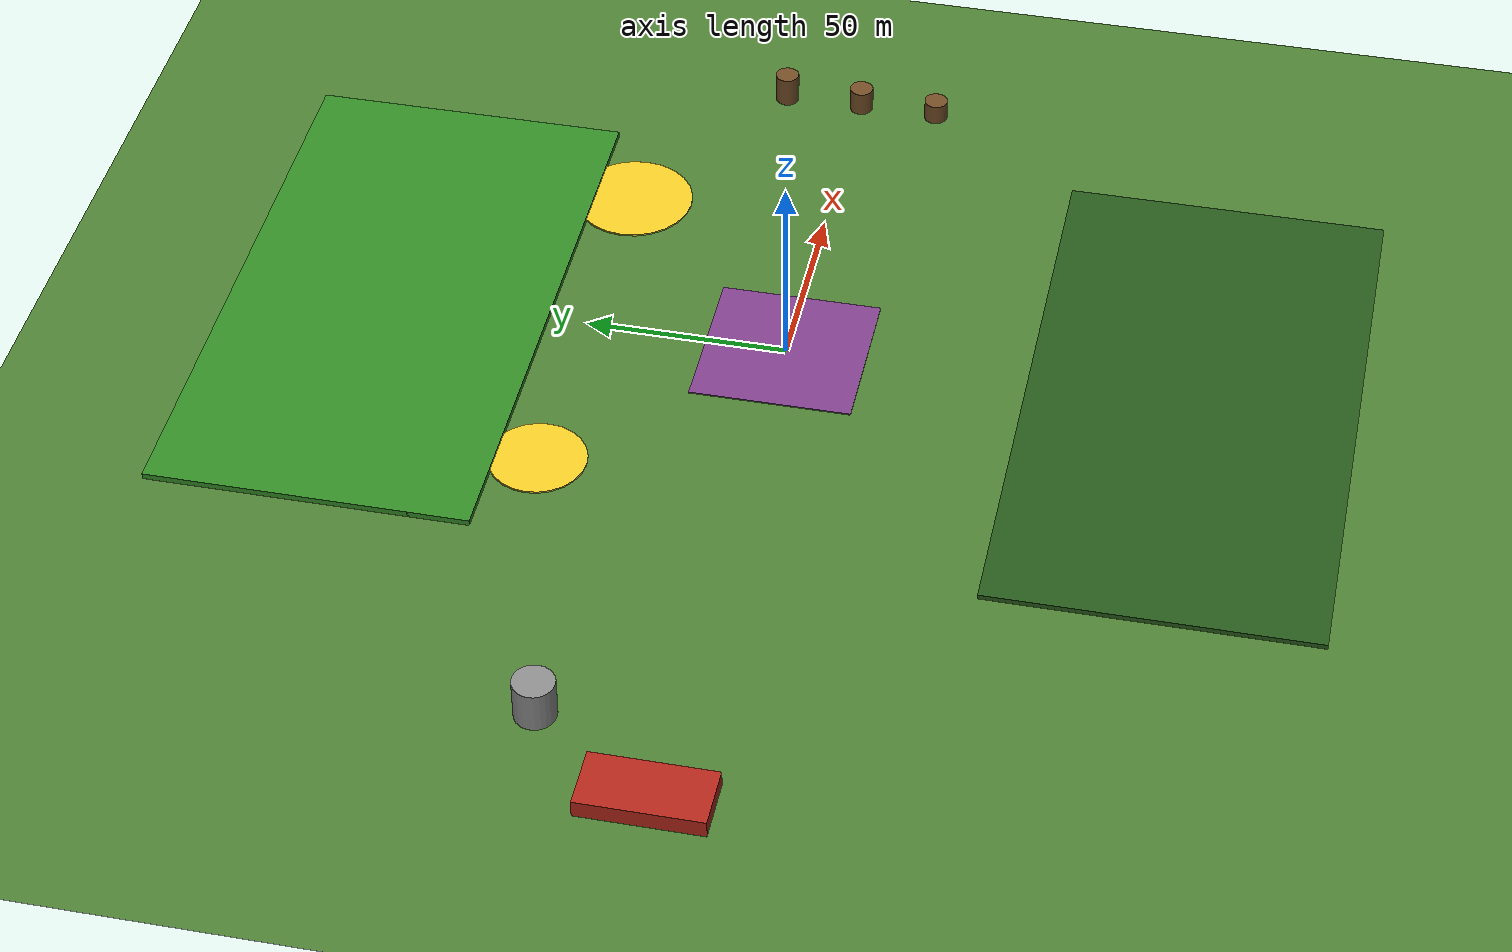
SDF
<sdf version="1.10">
 <world name="arg_fruits_tree">
  <physics type="ode">
   <max_step_size>0.0040000000000000001</max_step_size>
   <real_time_factor>1</real_time_factor>
   <real_time_update_rate>250</real_time_update_rate>
  </physics>
  <gravity>0 0 -9.8000000000000007</gravity>
  <magnetic_field>6.0000000000000002e-06 2.3e-05 -4.1999999999999998e-05</magnetic_field>
  <atmosphere type="adiabatic"/>
  <scene>
   <grid>false</grid>
   <ambient>0.400000006 0.400000006 0.400000006 1</ambient>
   <background>0.699999988 0.800000012 1 1</background>
   <shadows>true</shadows>
  </scene>
  <spherical_coordinates>
   <surface_model>EARTH_WGS84</surface_model>
   <world_frame_orientation>ENU</world_frame_orientation>
   <latitude_deg>37.774900000000002</latitude_deg>
   <longitude_deg>-122.4194</longitude_deg>
   <elevation>0</elevation>
   <heading_deg>0</heading_deg>
  </spherical_coordinates>
  <model name="ground_plane">
   <static>true</static>
   <link name="link">
    <collision name="collision">
     <geometry><plane><normal>0 0 1</normal><size>2000 2000</size></plane></geometry>
     <surface><friction><ode><mu>100</mu><mu2>50</mu2></ode></friction></surface>
    </collision>
    <visual name="visual">
     <geometry><plane><normal>0 0 1</normal><size>2000 2000</size></plane></geometry>
     <material>
      <ambient>0.25 0.400000006 0.180000007 1</ambient>
      <diffuse>0.300000012 0.5 0.200000003 1</diffuse>
      <specular>0.100000001 0.100000001 0.100000001 1</specular>
     </material>
    </visual>
    <inertial>
     <mass>1</mass>
     <inertia><ixx>1</ixx><ixy>0</ixy><ixz>0</ixz><iyy>1</iyy><iyz>0</iyz><izz>1</izz></inertia>
    </inertial>
   </link>
  </model>
  <model name="corn_field_1">
   <pose>0 100 0.10000000000000001 0 0 0</pose>
   <static>true</static>
   <link name="link">
    <visual name="visual">
     <geometry><box><size>150 80 2</size></box></geometry>
     <material>
      <ambient>0.150000006 0.449999988 0.119999997 1</ambient>
      <diffuse>0.200000003 0.550000012 0.150000006 1</diffuse>
      <specular>0.0500000007 0.0500000007 0.0500000007 1</specular>
     </material>
    </visual>
    <collision name="collision">
     <geometry><box><size>150 80 0.20000000000000001</size></box></geometry>
    </collision>
    <inertial>
     <mass>1</mass>
     <inertia><ixx>1</ixx><ixy>0</ixy><ixz>0</ixz><iyy>1</iyy><iyz>0</iyz><izz>1</izz></inertia>
    </inertial>
   </link>
  </model>
  <model name="soybean_field_1">
   <pose>0 -100 0.10000000000000001 0 0 0</pose>
   <static>true</static>
   <link name="link">
    <visual name="visual">
     <geometry><box><size>150 80 1.5</size></box></geometry>
     <material>
      <ambient>0.100000001 0.280000001 0.0799999982 1</ambient>
      <diffuse>0.150000006 0.349999994 0.100000001 1</diffuse>
      <specular>0.0500000007 0.0500000007 0.0500000007 1</specular>
     </material>
    </visual>
    <collision name="collision">
     <geometry><box><size>150 80 0.20000000000000001</size></box></geometry>
    </collision>
    <inertial>
     <mass>1</mass>
     <inertia><ixx>1</ixx><ixy>0</ixy><ixz>0</ixz><iyy>1</iyy><iyz>0</iyz><izz>1</izz></inertia>
    </inertial>
   </link>
  </model>
  <model name="sunflower_patch_1">
   <pose>50 50 0.20000000000000001 0 0 0</pose>
   <static>true</static>
   <link name="link">
    <visual name="visual">
     <geometry><cylinder><radius>15</radius><length>0.40000000000000002</length></cylinder></geometry>
     <material>
      <ambient>0.800000012 0.649999976 0.100000001 1</ambient>
      <diffuse>0.949999988 0.800000012 0.150000006 1</diffuse>
      <specular>0.200000003 0.200000003 0.100000001 1</specular>
     </material>
    </visual>
    <collision name="collision">
     <geometry><cylinder><radius>15</radius><length>0.40000000000000002</length></cylinder></geometry>
    </collision>
    <inertial>
     <mass>1</mass>
     <inertia><ixx>1</ixx><ixy>0</ixy><ixz>0</ixz><iyy>1</iyy><iyz>0</iyz><izz>1</izz></inertia>
    </inertial>
   </link>
  </model>
  <model name="sunflower_patch_2">
   <pose>-50 50 0.20000000000000001 0 0 0</pose>
   <static>true</static>
   <link name="link">
    <visual name="visual">
     <geometry><cylinder><radius>12</radius><length>0.40000000000000002</length></cylinder></geometry>
     <material>
      <ambient>0.800000012 0.649999976 0.100000001 1</ambient>
      <diffuse>0.949999988 0.800000012 0.150000006 1</diffuse>
      <specular>0.200000003 0.200000003 0.100000001 1</specular>
     </material>
    </visual>
    <collision name="collision">
     <geometry><cylinder><radius>12</radius><length>0.40000000000000002</length></cylinder></geometry>
    </collision>
    <inertial>
     <mass>1</mass>
     <inertia><ixx>1</ixx><ixy>0</ixy><ixz>0</ixz><iyy>1</iyy><iyz>0</iyz><izz>1</izz></inertia>
    </inertial>
   </link>
  </model>
  <model name="clover_field">
   <pose>0 0 0.14999999999999999 0 0 0</pose>
   <static>true</static>
   <link name="link">
    <visual name="visual">
     <geometry><box><size>40 40 0.29999999999999999</size></box></geometry>
     <material>
      <ambient>0.400000006 0.180000007 0.449999988 1</ambient>
      <diffuse>0.5 0.25 0.550000012 1</diffuse>
      <specular>0.100000001 0.100000001 0.100000001 1</specular>
     </material>
    </visual>
    <collision name="collision"><geometry><box><size>40 40 0.29999999999999999</size></box></geometry></collision>
    <inertial>
     <mass>1</mass>
     <inertia><ixx>1</ixx><ixy>0</ixy><ixz>0</ixz><iyy>1</iyy><iyz>0</iyz><izz>1</izz></inertia>
    </inertial>
   </link>
  </model>
  <model name="farm_barn">
   <pose>-150 0 0 0 0 1.5699999999999998</pose>
   <static>true</static>
   <link name="link">
    <visual name="visual">
     <geometry><box><size>30 15 8</size></box></geometry>
     <material>
      <ambient>0.550000012 0.119999997 0.0799999982 1</ambient>
      <diffuse>0.699999988 0.150000006 0.100000001 1</diffuse>
      <specular>0.100000001 0.100000001 0.100000001 1</specular>
     </material>
    </visual>
    <collision name="collision"><geometry><box><size>30 15 8</size></box></geometry></collision>
    <inertial>
     <mass>1</mass>
     <inertia><ixx>1</ixx><ixy>0</ixy><ixz>0</ixz><iyy>1</iyy><iyz>0</iyz><izz>1</izz></inertia>
    </inertial>
   </link>
  </model>
  <model name="farm_silo">
   <pose>-130 30 0 0 0 0</pose>
   <static>true</static>
   <link name="link">
    <visual name="visual">
     <geometry><cylinder><radius>5</radius><length>20</length></cylinder></geometry>
     <material>
      <ambient>0.449999988 0.449999988 0.449999988 1</ambient>
      <diffuse>0.550000012 0.550000012 0.550000012 1</diffuse>
      <specular>0.200000003 0.200000003 0.200000003 1</specular>
     </material>
    </visual>
    <collision name="collision">
     <geometry><cylinder><radius>5</radius><length>20</length></cylinder></geometry>
    </collision>
    <inertial>
     <mass>1</mass>
     <inertia><ixx>1</ixx><ixy>0</ixy><ixz>0</ixz><iyy>1</iyy><iyz>0</iyz><izz>1</izz></inertia>
    </inertial>
   </link>
  </model>
  <model name="tree_line_1">
   <pose>100 0 0 0 0 0</pose>
   <static>true</static>
   <link name="link">
    <visual name="visual">
     <geometry><cylinder><radius>3</radius><length>12</length></cylinder></geometry>
     <material>
      <ambient>0.349999994 0.219999999 0.100000001 1</ambient>
      <diffuse>0.449999988 0.300000012 0.150000006 1</diffuse>
      <specular>0.0500000007 0.0500000007 0.0500000007 1</specular>
     </material>
    </visual>
    <collision name="collision">
     <geometry><cylinder><radius>3</radius><length>12</length></cylinder></geometry>
    </collision>
    <inertial>
     <mass>1</mass>
     <inertia><ixx>1</ixx><ixy>0</ixy><ixz>0</ixz><iyy>1</iyy><iyz>0</iyz><izz>1</izz></inertia>
    </inertial>
   </link>
  </model>
  <model name="tree_line_2">
   <pose>100 20 0 0 0 0</pose>
   <static>true</static>
   <link name="link">
    <visual name="visual">
     <geometry><cylinder><radius>3</radius><length>15</length></cylinder></geometry>
     <material>
      <ambient>0.349999994 0.219999999 0.100000001 1</ambient>
      <diffuse>0.449999988 0.300000012 0.150000006 1</diffuse>
      <specular>0.0500000007 0.0500000007 0.0500000007 1</specular>
     </material>
    </visual>
    <collision name="collision">
     <geometry><cylinder><radius>3</radius><length>15</length></cylinder></geometry>
    </collision>
    <inertial>
     <mass>1</mass>
     <inertia><ixx>1</ixx><ixy>0</ixy><ixz>0</ixz><iyy>1</iyy><iyz>0</iyz><izz>1</izz></inertia>
    </inertial>
   </link>
  </model>
  <model name="tree_line_3">
   <pose>100 -20 0 0 0 0</pose>
   <static>true</static>
   <link name="link">
    <visual name="visual">
     <geometry><cylinder><radius>3</radius><length>10</length></cylinder></geometry>
     <material>
      <ambient>0.349999994 0.219999999 0.100000001 1</ambient>
      <diffuse>0.449999988 0.300000012 0.150000006 1</diffuse>
      <specular>0.0500000007 0.0500000007 0.0500000007 1</specular>
     </material>
    </visual>
    <collision name="collision">
     <geometry><cylinder><radius>3</radius><length>10</length></cylinder></geometry>
    </collision>
    <inertial>
     <mass>1</mass>
     <inertia><ixx>1</ixx><ixy>0</ixy><ixz>0</ixz><iyy>1</iyy><iyz>0</iyz><izz>1</izz></inertia>
    </inertial>
   </link>
  </model>
  <model name="fence_post_1">
   <pose>75 75 0 0 0 0</pose>
   <static>true</static>
   <link name="link">
    <visual name="visual">
     <geometry><cylinder><radius>0.10000000000000001</radius><length>2</length></cylinder></geometry>
     <material>
      <ambient>0.349999994 0.219999999 0.100000001 1</ambient>
      <diffuse>0.449999988 0.300000012 0.150000006 1</diffuse>
      <specular>0.0500000007 0.0500000007 0.0500000007 1</specular>
     </material>
    </visual>
    <collision name="collision">
     <geometry><cylinder><radius>0.10000000000000001</radius><length>2</length></cylinder></geometry>
    </collision>
    <inertial>
     <mass>1</mass>
     <inertia><ixx>1</ixx><ixy>0</ixy><ixz>0</ixz><iyy>1</iyy><iyz>0</iyz><izz>1</izz></inertia>
    </inertial>
   </link>
  </model>
  <model name="fence_post_2">
   <pose>-75 75 0 0 0 0</pose>
   <static>true</static>
   <link name="link">
    <visual name="visual">
     <geometry><cylinder><radius>0.10000000000000001</radius><length>2</length></cylinder></geometry>
     <material>
      <ambient>0.349999994 0.219999999 0.100000001 1</ambient>
      <diffuse>0.449999988 0.300000012 0.150000006 1</diffuse>
      <specular>0.0500000007 0.0500000007 0.0500000007 1</specular>
     </material>
    </visual>
    <collision name="collision">
     <geometry><cylinder><radius>0.10000000000000001</radius><length>2</length></cylinder></geometry>
    </collision>
    <inertial>
     <mass>1</mass>
     <inertia><ixx>1</ixx><ixy>0</ixy><ixz>0</ixz><iyy>1</iyy><iyz>0</iyz><izz>1</izz></inertia>
    </inertial>
   </link>
  </model>
  <light name="sun" type="directional">
   <pose>0 0 500 0 0 0</pose>
   <intensity>1</intensity>
   <direction>-0.5 0.10000000000000001 -0.90000000000000002</direction>
   <diffuse>0.899999976 0.899999976 0.899999976 1</diffuse>
   <specular>0.200000003 0.200000003 0.200000003 1</specular>
   <attenuation><range>10</range><linear>1</linear><constant>1</constant><quadratic>0</quadratic></attenuation>
   <spot><inner_angle>0</inner_angle><outer_angle>0</outer_angle><falloff>0</falloff></spot>
  </light>
 </world>
</sdf>
